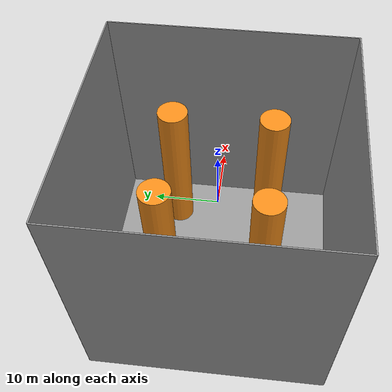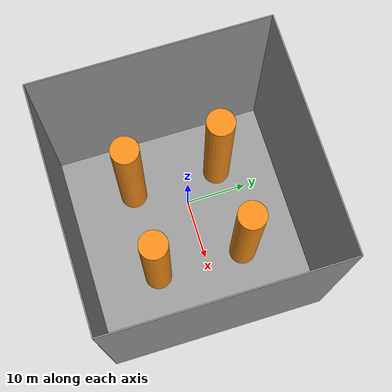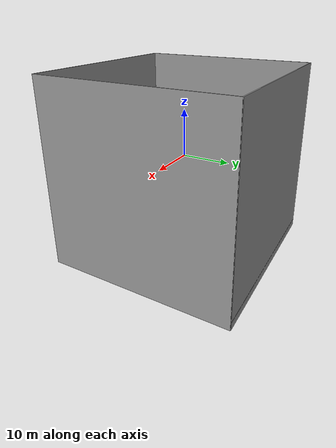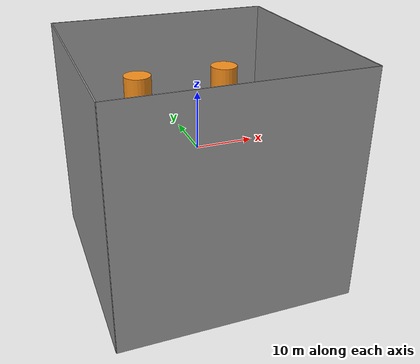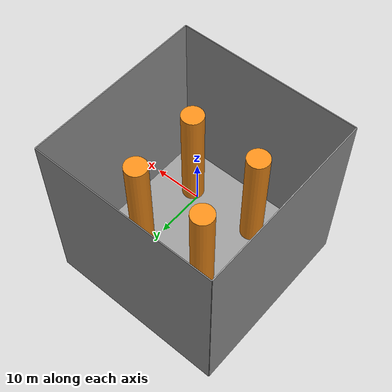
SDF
<sdf version="1.4">
 <world name="oceans_waves">
  <physics name="default_physics" default="true" type="ode">
   <max_step_size>0.002</max_step_size>
   <real_time_factor>1</real_time_factor>
   <real_time_update_rate>500</real_time_update_rate>
  </physics>
  <scene>
   <ambient>0.01 0.01 0.01 1.0</ambient>
   <sky><clouds><speed>12</speed></clouds></sky>
   <shadows>1</shadows>
   <fog>
    <color>0.2 0.3 0.8 1.0</color>
    <type>linear</type>
    <density>1.0</density>
    <start>1</start>
    <end>40</end>
   </fog>
  </scene>
  <spherical_coordinates>
   <latitude_deg>56.71897669633431</latitude_deg>
   <longitude_deg>3.515625</longitude_deg>
  </spherical_coordinates>
  <light type="directional" name="sun_diffuse_1">
   <pose>-200 -200 100 0 0 0</pose>
   <diffuse>0.2 0.3 0.8 1.0</diffuse>
   <specular>0 0 0 1</specular>
   <direction>-0.3 -0.3 -1</direction>
  </light>
  <light type="directional" name="sun_diffuse_2">
   <pose>-100 50 200 0 0 0</pose>
   <diffuse>0.2 0.3 0.8 1.0</diffuse>
   <specular>0 0 0 1</specular>
   <direction>-0.3 -0.3 -1</direction>
  </light>
  <light type="directional" name="sun_diffuse_3">
   <pose>-150 -130 50 0 0 0</pose>
   <diffuse>0.2 0.3 0.8 1.0</diffuse>
   <specular>0.2 0.3 0.8 1.0</specular>
   <direction>0.5 0.5 -1</direction>
  </light>
  <include><uri>model://grey_wall</uri><pose>0 -20.0 -3.0 0 0 0</pose><name>grey_wall_0</name></include>
  <include><uri>model://grey_wall</uri><pose>0 20.0 -3.0 0 0 0</pose><name>grey_wall_1</name></include>
  <include>
   <uri>model://grey_wall</uri>
   <pose>-20.0 0.0 -3.0 0 0 1.57079632679</pose>
   <name>grey_wall_2</name>
  </include>
  <include>
   <uri>model://grey_wall</uri>
   <pose>20.0 0.0 -3.0 0 0 1.57079632679</pose>
   <name>grey_wall_3</name>
  </include>
  <include>
   <uri>model://grey_wall</uri>
   <pose>0.0 1.5 -20.0 1.57079632679 0 0</pose>
   <name>grey_wall_4</name>
  </include>
  <include><uri>model://obstacle_1</uri><pose>8.0 8.0 -1.25 0.0 0 0</pose><name>obstacle_1</name></include>
  <include><uri>model://obstacle_1</uri><pose>-8.0 -8.0 -1.25 0.0 0 0</pose><name>obstacle_2</name></include>
  <include><uri>model://obstacle_1</uri><pose>8.0 -8.0 -1.25 0.0 0 0</pose><name>obstacle_3</name></include>
  <include><uri>model://obstacle_1</uri><pose>-8.0 8.0 -1.25 0.0 0 0</pose><name>obstacle_4</name></include>
  <plugin name="underwater_current_plugin" filename="libuuv_underwater_current_ros_plugin.so">
   <namespace>hydrodynamics</namespace>
   <constant_current>
    <topic>current_velocity</topic>
    <velocity><mean>0</mean><min>0</min><max>5</max><mu>0.0</mu><noiseAmp>0.0</noiseAmp></velocity>
    <horizontal_angle>
     <mean>0</mean>
     <min>-3.141592653589793238</min>
     <max>3.141592653589793238</max>
     <mu>0.0</mu>
     <noiseAmp>0.0</noiseAmp>
    </horizontal_angle>
    <vertical_angle>
     <mean>0</mean>
     <min>-3.141592653589793238</min>
     <max>3.141592653589793238</max>
     <mu>0.0</mu>
     <noiseAmp>0.0</noiseAmp>
    </vertical_angle>
   </constant_current>
  </plugin>
  <plugin name="sc_interface" filename="libuuv_sc_ros_interface_plugin.so"/>
 </world>
</sdf>

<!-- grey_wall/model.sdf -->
<sdf version="1.5">
  <model name="grey_wall">
    <static>true</static>
    <link name="link">
      <pose>0 0 1.4 0 0 0</pose>
      <collision name="collision">
        <geometry>
          <box>
            <size>40.0 0.2 40.0</size>
          </box>
        </geometry>
      </collision>
      <visual name="visual">
        <cast_shadows>false</cast_shadows>
        <geometry>
          <box>
            <size>40.0 0.2 40.0</size>
          </box>
        </geometry>
        <material>
          <script>
            <uri>model://grey_wall/materials/scripts</uri>
            <uri>model://grey_wall/materials/textures</uri>
            <name>vrc/grey_wall</name>
          </script>
        </material>
      </visual>
    </link>
  </model>
</sdf>

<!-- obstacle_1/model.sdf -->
<sdf version="1.5">
  <model name="obstacle_1">
    <static>false</static>
    <link name="link">
      <pose>0 0 0 0 0 0</pose>
      <collision name="collision">
        <geometry>
          <cylinder>
              <radius>2.4</radius>
              <length>25.0</length>
          </cylinder>
        </geometry>
      </collision>
      <visual name="visual">
        <geometry>
          <cylinder>
              <radius>2.4</radius>
              <length>25.0</length>
          </cylinder>
        </geometry>
	      <material>
            <script>
              <uri>file://media/materials/scripts/gazebo.material</uri>
              <name>Gazebo/Orange</name>
            </script>
        </material>
      </visual>
    </link>
  </model>
</sdf>
